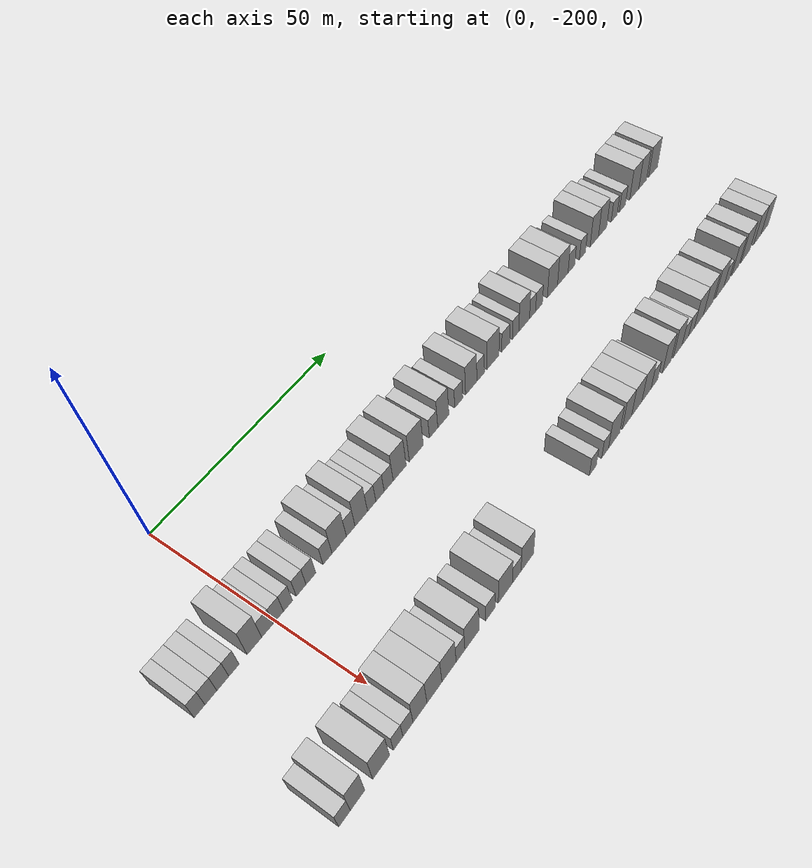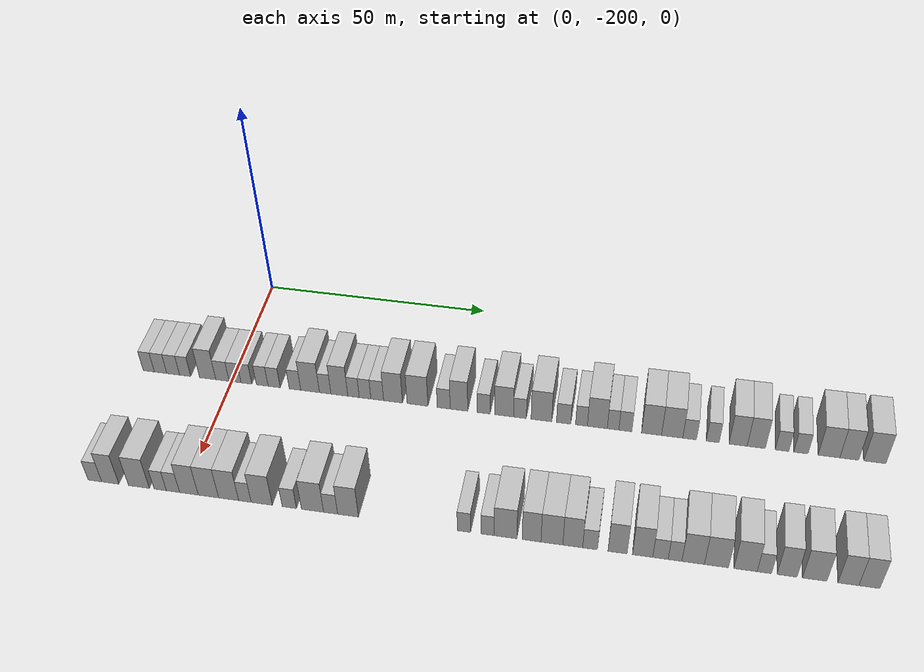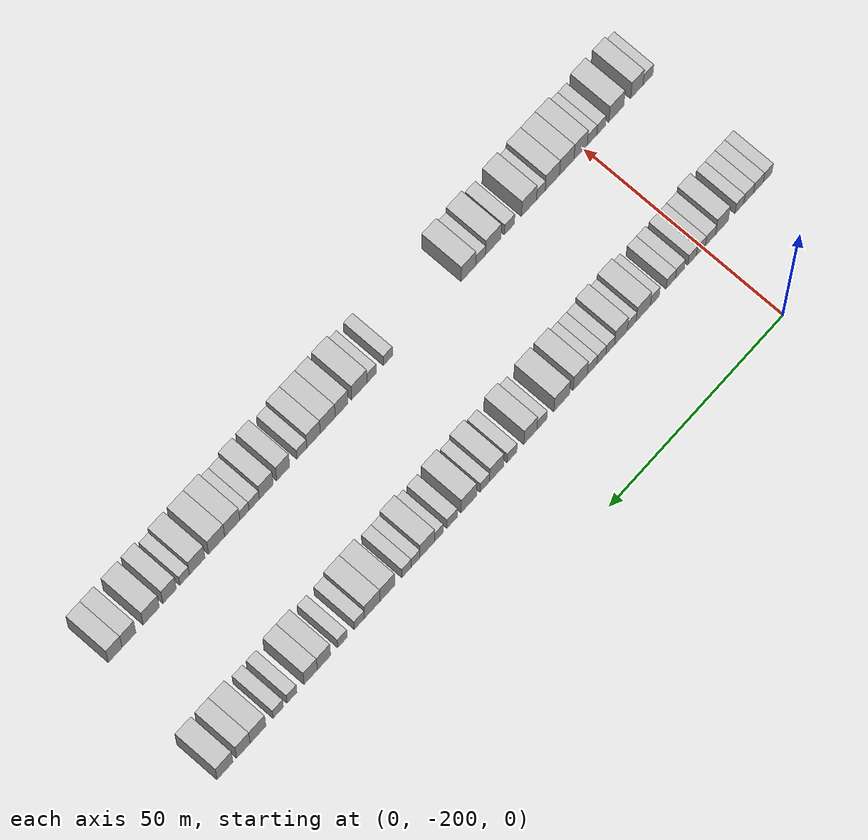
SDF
<sdf version="1.6">
 <world name="default">
  <model name="building_1">
   <static>1</static>
   <pose>25.0000 -218.7349 0 0.000000 0.000000 0.000000</pose>
   <link name="link">
    <pose>0 0 3.00 0 0 0</pose>
    <collision name="collision"><geometry><box><size>10.0000 2.5302 6.0000</size></box></geometry></collision>
    <visual name="visual">
     <cast_shadows>0</cast_shadows>
     <geometry><box><size>10.0000 2.5302 6.0000</size></box></geometry>
     <material>
      <script>
       <uri>model://HANNAS_wall/materials/scripts</uri>
       <uri>model://HANNAS_wall/materials/textures</uri>
       <name>vrc/HANNAS_wall</name>
      </script>
     </material>
    </visual>
   </link>
  </model>
  <model name="building_2">
   <static>1</static>
   <pose>25.0000 -216.0574 0 0.000000 0.000000 0.000000</pose>
   <link name="link">
    <pose>0 0 3.00 0 0 0</pose>
    <collision name="collision"><geometry><box><size>10.0000 2.8248 6.0000</size></box></geometry></collision>
    <visual name="visual">
     <cast_shadows>0</cast_shadows>
     <geometry><box><size>10.0000 2.8248 6.0000</size></box></geometry>
     <material>
      <script>
       <uri>model://HANNAS_wall/materials/scripts</uri>
       <uri>model://HANNAS_wall/materials/textures</uri>
       <name>vrc/HANNAS_wall</name>
      </script>
     </material>
    </visual>
   </link>
  </model>
  <model name="building_3">
   <static>1</static>
   <pose>25.0000 -213.1955 0 0.000000 0.000000 0.000000</pose>
   <link name="link">
    <pose>0 0 3.00 0 0 0</pose>
    <collision name="collision"><geometry><box><size>10.0000 2.8991 6.0000</size></box></geometry></collision>
    <visual name="visual">
     <cast_shadows>0</cast_shadows>
     <geometry><box><size>10.0000 2.8991 6.0000</size></box></geometry>
     <material>
      <script>
       <uri>model://HANNAS_wall/materials/scripts</uri>
       <uri>model://HANNAS_wall/materials/textures</uri>
       <name>vrc/HANNAS_wall</name>
      </script>
     </material>
    </visual>
   </link>
  </model>
  <model name="building_4">
   <static>1</static>
   <pose>25.0000 -210.4919 0 0.000000 0.000000 0.000000</pose>
   <link name="link">
    <pose>0 0 3.00 0 0 0</pose>
    <collision name="collision"><geometry><box><size>10.0000 2.5081 6.0000</size></box></geometry></collision>
    <visual name="visual">
     <cast_shadows>0</cast_shadows>
     <geometry><box><size>10.0000 2.5081 6.0000</size></box></geometry>
     <material>
      <script>
       <uri>model://HANNAS_wall/materials/scripts</uri>
       <uri>model://HANNAS_wall/materials/textures</uri>
       <name>vrc/HANNAS_wall</name>
      </script>
     </material>
    </visual>
   </link>
  </model>
  <model name="building_5">
   <static>1</static>
   <pose>25.0000 -205.4100 0 0.000000 0.000000 0.000000</pose>
   <link name="link">
    <pose>0 0 4.50 0 0 0</pose>
    <collision name="collision"><geometry><box><size>10.0000 3.6556 9.0000</size></box></geometry></collision>
    <visual name="visual">
     <cast_shadows>0</cast_shadows>
     <geometry><box><size>10.0000 3.6556 9.0000</size></box></geometry>
     <material>
      <script>
       <uri>model://HANNAS_wall/materials/scripts</uri>
       <uri>model://HANNAS_wall/materials/textures</uri>
       <name>vrc/HANNAS_wall</name>
      </script>
     </material>
    </visual>
   </link>
  </model>
  <model name="building_6">
   <static>1</static>
   <pose>25.0000 -202.0952 0 0.000000 0.000000 0.000000</pose>
   <link name="link">
    <pose>0 0 3.00 0 0 0</pose>
    <collision name="collision"><geometry><box><size>10.0000 2.9741 6.0000</size></box></geometry></collision>
    <visual name="visual">
     <cast_shadows>0</cast_shadows>
     <geometry><box><size>10.0000 2.9741 6.0000</size></box></geometry>
     <material>
      <script>
       <uri>model://HANNAS_wall/materials/scripts</uri>
       <uri>model://HANNAS_wall/materials/textures</uri>
       <name>vrc/HANNAS_wall</name>
      </script>
     </material>
    </visual>
   </link>
  </model>
  <model name="building_7">
   <static>1</static>
   <pose>25.0000 -199.2665 0 0.000000 0.000000 0.000000</pose>
   <link name="link">
    <pose>0 0 3.00 0 0 0</pose>
    <collision name="collision"><geometry><box><size>10.0000 2.6833 6.0000</size></box></geometry></collision>
    <visual name="visual">
     <cast_shadows>0</cast_shadows>
     <geometry><box><size>10.0000 2.6833 6.0000</size></box></geometry>
     <material>
      <script>
       <uri>model://HANNAS_wall/materials/scripts</uri>
       <uri>model://HANNAS_wall/materials/textures</uri>
       <name>vrc/HANNAS_wall</name>
      </script>
     </material>
    </visual>
   </link>
  </model>
  <model name="building_8">
   <static>1</static>
   <pose>25.0000 -196.7200 0 0.000000 0.000000 0.000000</pose>
   <link name="link">
    <pose>0 0 3.00 0 0 0</pose>
    <collision name="collision"><geometry><box><size>10.0000 2.4096 6.0000</size></box></geometry></collision>
    <visual name="visual">
     <cast_shadows>0</cast_shadows>
     <geometry><box><size>10.0000 2.4096 6.0000</size></box></geometry>
     <material>
      <script>
       <uri>model://HANNAS_wall/materials/scripts</uri>
       <uri>model://HANNAS_wall/materials/textures</uri>
       <name>vrc/HANNAS_wall</name>
      </script>
     </material>
    </visual>
   </link>
  </model>
  <model name="building_9">
   <static>1</static>
   <pose>25.0000 -193.1992 0 0.000000 0.000000 0.000000</pose>
   <link name="link">
    <pose>0 0 3.00 0 0 0</pose>
    <collision name="collision"><geometry><box><size>10.0000 2.6320 6.0000</size></box></geometry></collision>
    <visual name="visual">
     <cast_shadows>0</cast_shadows>
     <geometry><box><size>10.0000 2.6320 6.0000</size></box></geometry>
     <material>
      <script>
       <uri>model://HANNAS_wall/materials/scripts</uri>
       <uri>model://HANNAS_wall/materials/textures</uri>
       <name>vrc/HANNAS_wall</name>
      </script>
     </material>
    </visual>
   </link>
  </model>
  <model name="building_10">
   <static>1</static>
   <pose>25.0000 -190.5442 0 0.000000 0.000000 0.000000</pose>
   <link name="link">
    <pose>0 0 3.00 0 0 0</pose>
    <collision name="collision"><geometry><box><size>10.0000 2.6780 6.0000</size></box></geometry></collision>
    <visual name="visual">
     <cast_shadows>0</cast_shadows>
     <geometry><box><size>10.0000 2.6780 6.0000</size></box></geometry>
     <material>
      <script>
       <uri>model://HANNAS_wall/materials/scripts</uri>
       <uri>model://HANNAS_wall/materials/textures</uri>
       <name>vrc/HANNAS_wall</name>
      </script>
     </material>
    </visual>
   </link>
  </model>
  <model name="building_11">
   <static>1</static>
   <pose>25.0000 -185.9322 0 0.000000 0.000000 0.000000</pose>
   <link name="link">
    <pose>0 0 3.00 0 0 0</pose>
    <collision name="collision"><geometry><box><size>10.0000 2.5460 6.0000</size></box></geometry></collision>
    <visual name="visual">
     <cast_shadows>0</cast_shadows>
     <geometry><box><size>10.0000 2.5460 6.0000</size></box></geometry>
     <material>
      <script>
       <uri>model://HANNAS_wall/materials/scripts</uri>
       <uri>model://HANNAS_wall/materials/textures</uri>
       <name>vrc/HANNAS_wall</name>
      </script>
     </material>
    </visual>
   </link>
  </model>
  <model name="building_12">
   <static>1</static>
   <pose>25.0000 -182.6066 0 0.000000 0.000000 0.000000</pose>
   <link name="link">
    <pose>0 0 4.50 0 0 0</pose>
    <collision name="collision"><geometry><box><size>10.0000 4.1051 9.0000</size></box></geometry></collision>
    <visual name="visual">
     <cast_shadows>0</cast_shadows>
     <geometry><box><size>10.0000 4.1051 9.0000</size></box></geometry>
     <material>
      <script>
       <uri>model://HANNAS_wall/materials/scripts</uri>
       <uri>model://HANNAS_wall/materials/textures</uri>
       <name>vrc/HANNAS_wall</name>
      </script>
     </material>
    </visual>
   </link>
  </model>
  <model name="building_13">
   <static>1</static>
   <pose>25.0000 -179.2901 0 0.000000 0.000000 0.000000</pose>
   <link name="link">
    <pose>0 0 3.00 0 0 0</pose>
    <collision name="collision"><geometry><box><size>10.0000 2.5279 6.0000</size></box></geometry></collision>
    <visual name="visual">
     <cast_shadows>0</cast_shadows>
     <geometry><box><size>10.0000 2.5279 6.0000</size></box></geometry>
     <material>
      <script>
       <uri>model://HANNAS_wall/materials/scripts</uri>
       <uri>model://HANNAS_wall/materials/textures</uri>
       <name>vrc/HANNAS_wall</name>
      </script>
     </material>
    </visual>
   </link>
  </model>
  <model name="building_14">
   <static>1</static>
   <pose>25.0000 -176.1806 0 0.000000 0.000000 0.000000</pose>
   <link name="link">
    <pose>0 0 4.50 0 0 0</pose>
    <collision name="collision"><geometry><box><size>10.0000 3.6912 9.0000</size></box></geometry></collision>
    <visual name="visual">
     <cast_shadows>0</cast_shadows>
     <geometry><box><size>10.0000 3.6912 9.0000</size></box></geometry>
     <material>
      <script>
       <uri>model://HANNAS_wall/materials/scripts</uri>
       <uri>model://HANNAS_wall/materials/textures</uri>
       <name>vrc/HANNAS_wall</name>
      </script>
     </material>
    </visual>
   </link>
  </model>
  <model name="building_15">
   <static>1</static>
   <pose>25.0000 -173.0850 0 0.000000 0.000000 0.000000</pose>
   <link name="link">
    <pose>0 0 3.00 0 0 0</pose>
    <collision name="collision"><geometry><box><size>10.0000 2.4998 6.0000</size></box></geometry></collision>
    <visual name="visual">
     <cast_shadows>0</cast_shadows>
     <geometry><box><size>10.0000 2.4998 6.0000</size></box></geometry>
     <material>
      <script>
       <uri>model://HANNAS_wall/materials/scripts</uri>
       <uri>model://HANNAS_wall/materials/textures</uri>
       <name>vrc/HANNAS_wall</name>
      </script>
     </material>
    </visual>
   </link>
  </model>
  <model name="building_16">
   <static>1</static>
   <pose>25.0000 -170.5626 0 0.000000 0.000000 0.000000</pose>
   <link name="link">
    <pose>0 0 3.00 0 0 0</pose>
    <collision name="collision"><geometry><box><size>10.0000 2.5451 6.0000</size></box></geometry></collision>
    <visual name="visual">
     <cast_shadows>0</cast_shadows>
     <geometry><box><size>10.0000 2.5451 6.0000</size></box></geometry>
     <material>
      <script>
       <uri>model://HANNAS_wall/materials/scripts</uri>
       <uri>model://HANNAS_wall/materials/textures</uri>
       <name>vrc/HANNAS_wall</name>
      </script>
     </material>
    </visual>
   </link>
  </model>
  <model name="building_17">
   <static>1</static>
   <pose>25.0000 -167.9040 0 0.000000 0.000000 0.000000</pose>
   <link name="link">
    <pose>0 0 3.00 0 0 0</pose>
    <collision name="collision"><geometry><box><size>10.0000 2.7722 6.0000</size></box></geometry></collision>
    <visual name="visual">
     <cast_shadows>0</cast_shadows>
     <geometry><box><size>10.0000 2.7722 6.0000</size></box></geometry>
     <material>
      <script>
       <uri>model://HANNAS_wall/materials/scripts</uri>
       <uri>model://HANNAS_wall/materials/textures</uri>
       <name>vrc/HANNAS_wall</name>
      </script>
     </material>
    </visual>
   </link>
  </model>
  <model name="building_18">
   <static>1</static>
   <pose>25.0000 -164.4683 0 0.000000 0.000000 0.000000</pose>
   <link name="link">
    <pose>0 0 4.50 0 0 0</pose>
    <collision name="collision"><geometry><box><size>10.0000 4.0991 9.0000</size></box></geometry></collision>
    <visual name="visual">
     <cast_shadows>0</cast_shadows>
     <geometry><box><size>10.0000 4.0991 9.0000</size></box></geometry>
     <material>
      <script>
       <uri>model://HANNAS_wall/materials/scripts</uri>
       <uri>model://HANNAS_wall/materials/textures</uri>
       <name>vrc/HANNAS_wall</name>
      </script>
     </material>
    </visual>
   </link>
  </model>
  <model name="building_19">
   <static>1</static>
   <pose>25.0000 -159.1697 0 0.000000 0.000000 0.000000</pose>
   <link name="link">
    <pose>0 0 4.50 0 0 0</pose>
    <collision name="collision"><geometry><box><size>10.0000 4.4982 9.0000</size></box></geometry></collision>
    <visual name="visual">
     <cast_shadows>0</cast_shadows>
     <geometry><box><size>10.0000 4.4982 9.0000</size></box></geometry>
     <material>
      <script>
       <uri>model://HANNAS_wall/materials/scripts</uri>
       <uri>model://HANNAS_wall/materials/textures</uri>
       <name>vrc/HANNAS_wall</name>
      </script>
     </material>
    </visual>
   </link>
  </model>
  <model name="building_20">
   <static>1</static>
   <pose>25.0000 -153.5271 0 0.000000 0.000000 0.000000</pose>
   <link name="link">
    <pose>0 0 3.00 0 0 0</pose>
    <collision name="collision"><geometry><box><size>10.0000 2.7869 6.0000</size></box></geometry></collision>
    <visual name="visual">
     <cast_shadows>0</cast_shadows>
     <geometry><box><size>10.0000 2.7869 6.0000</size></box></geometry>
     <material>
      <script>
       <uri>model://HANNAS_wall/materials/scripts</uri>
       <uri>model://HANNAS_wall/materials/textures</uri>
       <name>vrc/HANNAS_wall</name>
      </script>
     </material>
    </visual>
   </link>
  </model>
  <model name="building_21">
   <static>1</static>
   <pose>25.0000 -150.2575 0 0.000000 0.000000 0.000000</pose>
   <link name="link">
    <pose>0 0 4.50 0 0 0</pose>
    <collision name="collision"><geometry><box><size>10.0000 3.7524 9.0000</size></box></geometry></collision>
    <visual name="visual">
     <cast_shadows>0</cast_shadows>
     <geometry><box><size>10.0000 3.7524 9.0000</size></box></geometry>
     <material>
      <script>
       <uri>model://HANNAS_wall/materials/scripts</uri>
       <uri>model://HANNAS_wall/materials/textures</uri>
       <name>vrc/HANNAS_wall</name>
      </script>
     </material>
    </visual>
   </link>
  </model>
  <model name="building_22">
   <static>1</static>
   <pose>25.0000 -145.0025 0 0.000000 0.000000 0.000000</pose>
   <link name="link">
    <pose>0 0 3.00 0 0 0</pose>
    <collision name="collision"><geometry><box><size>10.0000 2.7575 6.0000</size></box></geometry></collision>
    <visual name="visual">
     <cast_shadows>0</cast_shadows>
     <geometry><box><size>10.0000 2.7575 6.0000</size></box></geometry>
     <material>
      <script>
       <uri>model://HANNAS_wall/materials/scripts</uri>
       <uri>model://HANNAS_wall/materials/textures</uri>
       <name>vrc/HANNAS_wall</name>
      </script>
     </material>
    </visual>
   </link>
  </model>
  <model name="building_23">
   <static>1</static>
   <pose>25.0000 -140.6257 0 0.000000 0.000000 0.000000</pose>
   <link name="link">
    <pose>0 0 4.50 0 0 0</pose>
    <collision name="collision"><geometry><box><size>10.0000 3.9959 9.0000</size></box></geometry></collision>
    <visual name="visual">
     <cast_shadows>0</cast_shadows>
     <geometry><box><size>10.0000 3.9959 9.0000</size></box></geometry>
     <material>
      <script>
       <uri>model://HANNAS_wall/materials/scripts</uri>
       <uri>model://HANNAS_wall/materials/textures</uri>
       <name>vrc/HANNAS_wall</name>
      </script>
     </material>
    </visual>
   </link>
  </model>
  <model name="building_24">
   <static>1</static>
   <pose>25.0000 -137.2848 0 0.000000 0.000000 0.000000</pose>
   <link name="link">
    <pose>0 0 3.00 0 0 0</pose>
    <collision name="collision"><geometry><box><size>10.0000 2.6858 6.0000</size></box></geometry></collision>
    <visual name="visual">
     <cast_shadows>0</cast_shadows>
     <geometry><box><size>10.0000 2.6858 6.0000</size></box></geometry>
     <material>
      <script>
       <uri>model://HANNAS_wall/materials/scripts</uri>
       <uri>model://HANNAS_wall/materials/textures</uri>
       <name>vrc/HANNAS_wall</name>
      </script>
     </material>
    </visual>
   </link>
  </model>
  <model name="building_25">
   <static>1</static>
   <pose>25.0000 -132.7670 0 0.000000 0.000000 0.000000</pose>
   <link name="link">
    <pose>0 0 4.50 0 0 0</pose>
    <collision name="collision"><geometry><box><size>10.0000 4.3498 9.0000</size></box></geometry></collision>
    <visual name="visual">
     <cast_shadows>0</cast_shadows>
     <geometry><box><size>10.0000 4.3498 9.0000</size></box></geometry>
     <material>
      <script>
       <uri>model://HANNAS_wall/materials/scripts</uri>
       <uri>model://HANNAS_wall/materials/textures</uri>
       <name>vrc/HANNAS_wall</name>
      </script>
     </material>
    </visual>
   </link>
  </model>
  <model name="building_26">
   <static>1</static>
   <pose>25.0000 -128.0927 0 0.000000 0.000000 0.000000</pose>
   <link name="link">
    <pose>0 0 3.00 0 0 0</pose>
    <collision name="collision"><geometry><box><size>10.0000 2.9987 6.0000</size></box></geometry></collision>
    <visual name="visual">
     <cast_shadows>0</cast_shadows>
     <geometry><box><size>10.0000 2.9987 6.0000</size></box></geometry>
     <material>
      <script>
       <uri>model://HANNAS_wall/materials/scripts</uri>
       <uri>model://HANNAS_wall/materials/textures</uri>
       <name>vrc/HANNAS_wall</name>
      </script>
     </material>
    </visual>
   </link>
  </model>
  <model name="building_27">
   <static>1</static>
   <pose>25.0000 -124.3607 0 0.000000 0.000000 0.000000</pose>
   <link name="link">
    <pose>0 0 3.00 0 0 0</pose>
    <collision name="collision"><geometry><box><size>10.0000 2.4653 6.0000</size></box></geometry></collision>
    <visual name="visual">
     <cast_shadows>0</cast_shadows>
     <geometry><box><size>10.0000 2.4653 6.0000</size></box></geometry>
     <material>
      <script>
       <uri>model://HANNAS_wall/materials/scripts</uri>
       <uri>model://HANNAS_wall/materials/textures</uri>
       <name>vrc/HANNAS_wall</name>
      </script>
     </material>
    </visual>
   </link>
  </model>
  <model name="building_28">
   <static>1</static>
   <pose>25.0000 -121.0586 0 0.000000 0.000000 0.000000</pose>
   <link name="link">
    <pose>0 0 4.50 0 0 0</pose>
    <collision name="collision"><geometry><box><size>10.0000 4.1390 9.0000</size></box></geometry></collision>
    <visual name="visual">
     <cast_shadows>0</cast_shadows>
     <geometry><box><size>10.0000 4.1390 9.0000</size></box></geometry>
     <material>
      <script>
       <uri>model://HANNAS_wall/materials/scripts</uri>
       <uri>model://HANNAS_wall/materials/textures</uri>
       <name>vrc/HANNAS_wall</name>
      </script>
     </material>
    </visual>
   </link>
  </model>
  <model name="building_29">
   <static>1</static>
   <pose>25.0000 -117.7855 0 0.000000 0.000000 0.000000</pose>
   <link name="link">
    <pose>0 0 3.00 0 0 0</pose>
    <collision name="collision"><geometry><box><size>10.0000 2.4071 6.0000</size></box></geometry></collision>
    <visual name="visual">
     <cast_shadows>0</cast_shadows>
     <geometry><box><size>10.0000 2.4071 6.0000</size></box></geometry>
     <material>
      <script>
       <uri>model://HANNAS_wall/materials/scripts</uri>
       <uri>model://HANNAS_wall/materials/textures</uri>
       <name>vrc/HANNAS_wall</name>
      </script>
     </material>
    </visual>
   </link>
  </model>
  <model name="building_30">
   <static>1</static>
   <pose>25.0000 -115.2369 0 0.000000 0.000000 0.000000</pose>
   <link name="link">
    <pose>0 0 3.00 0 0 0</pose>
    <collision name="collision"><geometry><box><size>10.0000 2.6901 6.0000</size></box></geometry></collision>
    <visual name="visual">
     <cast_shadows>0</cast_shadows>
     <geometry><box><size>10.0000 2.6901 6.0000</size></box></geometry>
     <material>
      <script>
       <uri>model://HANNAS_wall/materials/scripts</uri>
       <uri>model://HANNAS_wall/materials/textures</uri>
       <name>vrc/HANNAS_wall</name>
      </script>
     </material>
    </visual>
   </link>
  </model>
  <model name="building_31">
   <static>1</static>
   <pose>25.0000 -109.8284 0 0.000000 0.000000 0.000000</pose>
   <link name="link">
    <pose>0 0 4.50 0 0 0</pose>
    <collision name="collision"><geometry><box><size>10.0000 4.1269 9.0000</size></box></geometry></collision>
    <visual name="visual">
     <cast_shadows>0</cast_shadows>
     <geometry><box><size>10.0000 4.1269 9.0000</size></box></geometry>
     <material>
      <script>
       <uri>model://HANNAS_wall/materials/scripts</uri>
       <uri>model://HANNAS_wall/materials/textures</uri>
       <name>vrc/HANNAS_wall</name>
      </script>
     </material>
    </visual>
   </link>
  </model>
  <model name="building_32">
   <static>1</static>
   <pose>25.0000 -105.5855 0 0.000000 0.000000 0.000000</pose>
   <link name="link">
    <pose>0 0 4.50 0 0 0</pose>
    <collision name="collision"><geometry><box><size>10.0000 4.3590 9.0000</size></box></geometry></collision>
    <visual name="visual">
     <cast_shadows>0</cast_shadows>
     <geometry><box><size>10.0000 4.3590 9.0000</size></box></geometry>
     <material>
      <script>
       <uri>model://HANNAS_wall/materials/scripts</uri>
       <uri>model://HANNAS_wall/materials/textures</uri>
       <name>vrc/HANNAS_wall</name>
      </script>
     </material>
    </visual>
   </link>
  </model>
  <model name="building_33">
   <static>1</static>
   <pose>25.0000 -101.9977 0 0.000000 0.000000 0.000000</pose>
   <link name="link">
    <pose>0 0 3.00 0 0 0</pose>
    <collision name="collision"><geometry><box><size>10.0000 2.8165 6.0000</size></box></geometry></collision>
    <visual name="visual">
     <cast_shadows>0</cast_shadows>
     <geometry><box><size>10.0000 2.8165 6.0000</size></box></geometry>
     <material>
      <script>
       <uri>model://HANNAS_wall/materials/scripts</uri>
       <uri>model://HANNAS_wall/materials/textures</uri>
       <name>vrc/HANNAS_wall</name>
      </script>
     </material>
    </visual>
   </link>
  </model>
  <model name="building_34">
   <static>1</static>
   <pose>25.0000 -97.2741 0 0.000000 0.000000 0.000000</pose>
   <link name="link">
    <pose>0 0 3.00 0 0 0</pose>
    <collision name="collision"><geometry><box><size>10.0000 2.6306 6.0000</size></box></geometry></collision>
    <visual name="visual">
     <cast_shadows>0</cast_shadows>
     <geometry><box><size>10.0000 2.6306 6.0000</size></box></geometry>
     <material>
      <script>
       <uri>model://HANNAS_wall/materials/scripts</uri>
       <uri>model://HANNAS_wall/materials/textures</uri>
       <name>vrc/HANNAS_wall</name>
      </script>
     </material>
    </visual>
   </link>
  </model>
  <model name="building_35">
   <static>1</static>
   <pose>25.0000 -92.1149 0 0.000000 0.000000 0.000000</pose>
   <link name="link">
    <pose>0 0 4.50 0 0 0</pose>
    <collision name="collision"><geometry><box><size>10.0000 3.6878 9.0000</size></box></geometry></collision>
    <visual name="visual">
     <cast_shadows>0</cast_shadows>
     <geometry><box><size>10.0000 3.6878 9.0000</size></box></geometry>
     <material>
      <script>
       <uri>model://HANNAS_wall/materials/scripts</uri>
       <uri>model://HANNAS_wall/materials/textures</uri>
       <name>vrc/HANNAS_wall</name>
      </script>
     </material>
    </visual>
   </link>
  </model>
  <model name="building_36">
   <static>1</static>
   <pose>25.0000 -88.4303 0 0.000000 0.000000 0.000000</pose>
   <link name="link">
    <pose>0 0 4.50 0 0 0</pose>
    <collision name="collision"><geometry><box><size>10.0000 3.6813 9.0000</size></box></geometry></collision>
    <visual name="visual">
     <cast_shadows>0</cast_shadows>
     <geometry><box><size>10.0000 3.6813 9.0000</size></box></geometry>
     <material>
      <script>
       <uri>model://HANNAS_wall/materials/scripts</uri>
       <uri>model://HANNAS_wall/materials/textures</uri>
       <name>vrc/HANNAS_wall</name>
      </script>
     </material>
    </visual>
   </link>
  </model>
  <model name="building_37">
   <static>1</static>
   <pose>25.0000 -83.2253 0 0.000000 0.000000 0.000000</pose>
   <link name="link">
    <pose>0 0 3.00 0 0 0</pose>
    <collision name="collision"><geometry><box><size>10.0000 2.7287 6.0000</size></box></geometry></collision>
    <visual name="visual">
     <cast_shadows>0</cast_shadows>
     <geometry><box><size>10.0000 2.7287 6.0000</size></box></geometry>
     <material>
      <script>
       <uri>model://HANNAS_wall/materials/scripts</uri>
       <uri>model://HANNAS_wall/materials/textures</uri>
       <name>vrc/HANNAS_wall</name>
      </script>
     </material>
    </visual>
   </link>
  </model>
  <model name="building_38">
   <static>1</static>
   <pose>25.0000 -79.4292 0 0.000000 0.000000 0.000000</pose>
   <link name="link">
    <pose>0 0 3.00 0 0 0</pose>
    <collision name="collision"><geometry><box><size>10.0000 2.8636 6.0000</size></box></geometry></collision>
    <visual name="visual">
     <cast_shadows>0</cast_shadows>
     <geometry><box><size>10.0000 2.8636 6.0000</size></box></geometry>
     <material>
      <script>
       <uri>model://HANNAS_wall/materials/scripts</uri>
       <uri>model://HANNAS_wall/materials/textures</uri>
       <name>vrc/HANNAS_wall</name>
      </script>
     </material>
    </visual>
   </link>
  </model>
  <model name="building_39">
   <static>1</static>
   <pose>25.0000 -73.8341 0 0.000000 0.000000 0.000000</pose>
   <link name="link">
    <pose>0 0 4.50 0 0 0</pose>
    <collision name="collision"><geometry><box><size>10.0000 4.3264 9.0000</size></box></geometry></collision>
    <visual name="visual">
     <cast_shadows>0</cast_shadows>
     <geometry><box><size>10.0000 4.3264 9.0000</size></box></geometry>
     <material>
      <script>
       <uri>model://HANNAS_wall/materials/scripts</uri>
       <uri>model://HANNAS_wall/materials/textures</uri>
       <name>vrc/HANNAS_wall</name>
      </script>
     </material>
    </visual>
   </link>
  </model>
  <model name="building_40">
   <static>1</static>
   <pose>25.0000 -69.7918 0 0.000000 0.000000 0.000000</pose>
   <link name="link">
    <pose>0 0 4.50 0 0 0</pose>
    <collision name="collision"><geometry><box><size>10.0000 3.7582 9.0000</size></box></geometry></collision>
    <visual name="visual">
     <cast_shadows>0</cast_shadows>
     <geometry><box><size>10.0000 3.7582 9.0000</size></box></geometry>
     <material>
      <script>
       <uri>model://HANNAS_wall/materials/scripts</uri>
       <uri>model://HANNAS_wall/materials/textures</uri>
       <name>vrc/HANNAS_wall</name>
      </script>
     </material>
    </visual>
   </link>
  </model>
  <model name="building_41">
   <static>1</static>
   <pose>25.0000 -64.7160 0 0.000000 0.000000 0.000000</pose>
   <link name="link">
    <pose>0 0 4.50 0 0 0</pose>
    <collision name="collision"><geometry><box><size>10.0000 4.3934 9.0000</size></box></geometry></collision>
    <visual name="visual">
     <cast_shadows>0</cast_shadows>
     <geometry><box><size>10.0000 4.3934 9.0000</size></box></geometry>
     <material>
      <script>
       <uri>model://HANNAS_wall/materials/scripts</uri>
       <uri>model://HANNAS_wall/materials/textures</uri>
       <name>vrc/HANNAS_wall</name>
      </script>
     </material>
    </visual>
   </link>
  </model>
  <model name="building_118">
   <static>1</static>
   <pose>55.0000 -218.5752 0 0.000000 0.000000 0.000000</pose>
   <link name="link">
    <pose>0 0 3.00 0 0 0</pose>
    <collision name="collision"><geometry><box><size>10.0000 2.8496 6.0000</size></box></geometry></collision>
    <visual name="visual">
     <cast_shadows>0</cast_shadows>
     <geometry><box><size>10.0000 2.8496 6.0000</size></box></geometry>
     <material>
      <script>
       <uri>model://HANNAS_wall/materials/scripts</uri>
       <uri>model://HANNAS_wall/materials/textures</uri>
       <name>vrc/HANNAS_wall</name>
      </script>
     </material>
    </visual>
   </link>
  </model>
  <model name="building_119">
   <static>1</static>
   <pose>55.0000 -215.3439 0 0.000000 0.000000 0.000000</pose>
   <link name="link">
    <pose>0 0 4.50 0 0 0</pose>
    <collision name="collision"><geometry><box><size>10.0000 3.6129 9.0000</size></box></geometry></collision>
    <visual name="visual">
     <cast_shadows>0</cast_shadows>
     <geometry><box><size>10.0000 3.6129 9.0000</size></box></geometry>
     <material>
      <script>
       <uri>model://HANNAS_wall/materials/scripts</uri>
       <uri>model://HANNAS_wall/materials/textures</uri>
       <name>vrc/HANNAS_wall</name>
      </script>
     </material>
    </visual>
   </link>
  </model>
  <model name="building_120">
   <static>1</static>
   <pose>55.0000 -209.3565 0 0.000000 0.000000 0.000000</pose>
   <link name="link">
    <pose>0 0 4.50 0 0 0</pose>
    <collision name="collision"><geometry><box><size>10.0000 4.3619 9.0000</size></box></geometry></collision>
    <visual name="visual">
     <cast_shadows>0</cast_shadows>
     <geometry><box><size>10.0000 4.3619 9.0000</size></box></geometry>
     <material>
      <script>
       <uri>model://HANNAS_wall/materials/scripts</uri>
       <uri>model://HANNAS_wall/materials/textures</uri>
       <name>vrc/HANNAS_wall</name>
      </script>
     </material>
    </visual>
   </link>
  </model>
  <model name="building_121">
   <static>1</static>
   <pose>55.0000 -204.9150 0 0.000000 0.000000 0.000000</pose>
   <link name="link">
    <pose>0 0 3.00 0 0 0</pose>
    <collision name="collision"><geometry><box><size>10.0000 2.5211 6.0000</size></box></geometry></collision>
    <visual name="visual">
     <cast_shadows>0</cast_shadows>
     <geometry><box><size>10.0000 2.5211 6.0000</size></box></geometry>
     <material>
      <script>
       <uri>model://HANNAS_wall/materials/scripts</uri>
       <uri>model://HANNAS_wall/materials/textures</uri>
       <name>vrc/HANNAS_wall</name>
      </script>
     </material>
    </visual>
   </link>
  </model>
  <model name="building_122">
   <static>1</static>
   <pose>55.0000 -202.2843 0 0.000000 0.000000 0.000000</pose>
   <link name="link">
    <pose>0 0 3.00 0 0 0</pose>
    <collision name="collision"><geometry><box><size>10.0000 2.7402 6.0000</size></box></geometry></collision>
    <visual name="visual">
     <cast_shadows>0</cast_shadows>
     <geometry><box><size>10.0000 2.7402 6.0000</size></box></geometry>
     <material>
      <script>
       <uri>model://HANNAS_wall/materials/scripts</uri>
       <uri>model://HANNAS_wall/materials/textures</uri>
       <name>vrc/HANNAS_wall</name>
      </script>
     </material>
    </visual>
   </link>
  </model>
  <model name="building_123">
   <static>1</static>
   <pose>55.0000 -198.9891 0 0.000000 0.000000 0.000000</pose>
   <link name="link">
    <pose>0 0 4.50 0 0 0</pose>
    <collision name="collision"><geometry><box><size>10.0000 3.8501 9.0000</size></box></geometry></collision>
    <visual name="visual">
     <cast_shadows>0</cast_shadows>
     <geometry><box><size>10.0000 3.8501 9.0000</size></box></geometry>
     <material>
      <script>
       <uri>model://HANNAS_wall/materials/scripts</uri>
       <uri>model://HANNAS_wall/materials/textures</uri>
       <name>vrc/HANNAS_wall</name>
      </script>
     </material>
    </visual>
   </link>
  </model>
  <model name="building_124">
   <static>1</static>
   <pose>55.0000 -194.9635 0 0.000000 0.000000 0.000000</pose>
   <link name="link">
    <pose>0 0 4.50 0 0 0</pose>
    <collision name="collision"><geometry><box><size>10.0000 4.2012 9.0000</size></box></geometry></collision>
    <visual name="visual">
     <cast_shadows>0</cast_shadows>
     <geometry><box><size>10.0000 4.2012 9.0000</size></box></geometry>
     <material>
      <script>
       <uri>model://HANNAS_wall/materials/scripts</uri>
       <uri>model://HANNAS_wall/materials/textures</uri>
       <name>vrc/HANNAS_wall</name>
      </script>
     </material>
    </visual>
   </link>
  </model>
  <model name="building_125">
   <static>1</static>
   <pose>55.0000 -190.8071 0 0.000000 0.000000 0.000000</pose>
   <link name="link">
    <pose>0 0 4.50 0 0 0</pose>
    <collision name="collision"><geometry><box><size>10.0000 4.1116 9.0000</size></box></geometry></collision>
    <visual name="visual">
     <cast_shadows>0</cast_shadows>
     <geometry><box><size>10.0000 4.1116 9.0000</size></box></geometry>
     <material>
      <script>
       <uri>model://HANNAS_wall/materials/scripts</uri>
       <uri>model://HANNAS_wall/materials/textures</uri>
       <name>vrc/HANNAS_wall</name>
      </script>
     </material>
    </visual>
   </link>
  </model>
  <model name="building_126">
   <static>1</static>
   <pose>55.0000 -187.4782 0 0.000000 0.000000 0.000000</pose>
   <link name="link">
    <pose>0 0 3.00 0 0 0</pose>
    <collision name="collision"><geometry><box><size>10.0000 2.5463 6.0000</size></box></geometry></collision>
    <visual name="visual">
     <cast_shadows>0</cast_shadows>
     <geometry><box><size>10.0000 2.5463 6.0000</size></box></geometry>
     <material>
      <script>
       <uri>model://HANNAS_wall/materials/scripts</uri>
       <uri>model://HANNAS_wall/materials/textures</uri>
       <name>vrc/HANNAS_wall</name>
      </script>
     </material>
    </visual>
   </link>
  </model>
  <model name="building_127">
   <static>1</static>
   <pose>55.0000 -184.0523 0 0.000000 0.000000 0.000000</pose>
   <link name="link">
    <pose>0 0 4.50 0 0 0</pose>
    <collision name="collision"><geometry><box><size>10.0000 4.3056 9.0000</size></box></geometry></collision>
    <visual name="visual">
     <cast_shadows>0</cast_shadows>
     <geometry><box><size>10.0000 4.3056 9.0000</size></box></geometry>
     <material>
      <script>
       <uri>model://HANNAS_wall/materials/scripts</uri>
       <uri>model://HANNAS_wall/materials/textures</uri>
       <name>vrc/HANNAS_wall</name>
      </script>
     </material>
    </visual>
   </link>
  </model>
  <model name="building_128">
   <static>1</static>
   <pose>55.0000 -178.4528 0 0.000000 0.000000 0.000000</pose>
   <link name="link">
    <pose>0 0 3.00 0 0 0</pose>
    <collision name="collision"><geometry><box><size>10.0000 2.8933 6.0000</size></box></geometry></collision>
    <visual name="visual">
     <cast_shadows>0</cast_shadows>
     <geometry><box><size>10.0000 2.8933 6.0000</size></box></geometry>
     <material>
      <script>
       <uri>model://HANNAS_wall/materials/scripts</uri>
       <uri>model://HANNAS_wall/materials/textures</uri>
       <name>vrc/HANNAS_wall</name>
      </script>
     </material>
    </visual>
   </link>
  </model>
  <model name="building_129">
   <static>1</static>
   <pose>55.0000 -173.7795 0 0.000000 0.000000 0.000000</pose>
   <link name="link">
    <pose>0 0 4.50 0 0 0</pose>
    <collision name="collision"><geometry><box><size>10.0000 4.4534 9.0000</size></box></geometry></collision>
    <visual name="visual">
     <cast_shadows>0</cast_shadows>
     <geometry><box><size>10.0000 4.4534 9.0000</size></box></geometry>
     <material>
      <script>
       <uri>model://HANNAS_wall/materials/scripts</uri>
       <uri>model://HANNAS_wall/materials/textures</uri>
       <name>vrc/HANNAS_wall</name>
      </script>
     </material>
    </visual>
   </link>
  </model>
  <model name="building_130">
   <static>1</static>
   <pose>55.0000 -170.1453 0 0.000000 0.000000 0.000000</pose>
   <link name="link">
    <pose>0 0 3.00 0 0 0</pose>
    <collision name="collision"><geometry><box><size>10.0000 2.8149 6.0000</size></box></geometry></collision>
    <visual name="visual">
     <cast_shadows>0</cast_shadows>
     <geometry><box><size>10.0000 2.8149 6.0000</size></box></geometry>
     <material>
      <script>
       <uri>model://HANNAS_wall/materials/scripts</uri>
       <uri>model://HANNAS_wall/materials/textures</uri>
       <name>vrc/HANNAS_wall</name>
      </script>
     </material>
    </visual>
   </link>
  </model>
  <model name="building_131">
   <static>1</static>
   <pose>55.0000 -166.6610 0 0.000000 0.000000 0.000000</pose>
   <link name="link">
    <pose>0 0 4.50 0 0 0</pose>
    <collision name="collision"><geometry><box><size>10.0000 4.1536 9.0000</size></box></geometry></collision>
    <visual name="visual">
     <cast_shadows>0</cast_shadows>
     <geometry><box><size>10.0000 4.1536 9.0000</size></box></geometry>
     <material>
      <script>
       <uri>model://HANNAS_wall/materials/scripts</uri>
       <uri>model://HANNAS_wall/materials/textures</uri>
       <name>vrc/HANNAS_wall</name>
      </script>
     </material>
    </visual>
   </link>
  </model>
  <model name="building_132">
   <static>1</static>
   <pose>55.0000 -143.7224 0 0.000000 0.000000 0.000000</pose>
   <link name="link">
    <pose>0 0 3.00 0 0 0</pose>
    <collision name="collision"><geometry><box><size>10.0000 2.5746 6.0000</size></box></geometry></collision>
    <visual name="visual">
     <cast_shadows>0</cast_shadows>
     <geometry><box><size>10.0000 2.5746 6.0000</size></box></geometry>
     <material>
      <script>
       <uri>model://HANNAS_wall/materials/scripts</uri>
       <uri>model://HANNAS_wall/materials/textures</uri>
       <name>vrc/HANNAS_wall</name>
      </script>
     </material>
    </visual>
   </link>
  </model>
  <model name="building_133">
   <static>1</static>
   <pose>55.0000 -139.1260 0 0.000000 0.000000 0.000000</pose>
   <link name="link">
    <pose>0 0 3.00 0 0 0</pose>
    <collision name="collision"><geometry><box><size>10.0000 2.6182 6.0000</size></box></geometry></collision>
    <visual name="visual">
     <cast_shadows>0</cast_shadows>
     <geometry><box><size>10.0000 2.6182 6.0000</size></box></geometry>
     <material>
      <script>
       <uri>model://HANNAS_wall/materials/scripts</uri>
       <uri>model://HANNAS_wall/materials/textures</uri>
       <name>vrc/HANNAS_wall</name>
      </script>
     </material>
    </visual>
   </link>
  </model>
  <model name="building_134">
   <static>1</static>
   <pose>55.0000 -135.6307 0 0.000000 0.000000 0.000000</pose>
   <link name="link">
    <pose>0 0 4.50 0 0 0</pose>
    <collision name="collision"><geometry><box><size>10.0000 4.3723 9.0000</size></box></geometry></collision>
    <visual name="visual">
     <cast_shadows>0</cast_shadows>
     <geometry><box><size>10.0000 4.3723 9.0000</size></box></geometry>
     <material>
      <script>
       <uri>model://HANNAS_wall/materials/scripts</uri>
       <uri>model://HANNAS_wall/materials/textures</uri>
       <name>vrc/HANNAS_wall</name>
      </script>
     </material>
    </visual>
   </link>
  </model>
  <model name="building_135">
   <static>1</static>
   <pose>55.0000 -130.6208 0 0.000000 0.000000 0.000000</pose>
   <link name="link">
    <pose>0 0 4.50 0 0 0</pose>
    <collision name="collision"><geometry><box><size>10.0000 3.6475 9.0000</size></box></geometry></collision>
    <visual name="visual">
     <cast_shadows>0</cast_shadows>
     <geometry><box><size>10.0000 3.6475 9.0000</size></box></geometry>
     <material>
      <script>
       <uri>model://HANNAS_wall/materials/scripts</uri>
       <uri>model://HANNAS_wall/materials/textures</uri>
       <name>vrc/HANNAS_wall</name>
      </script>
     </material>
    </visual>
   </link>
  </model>
  <model name="building_136">
   <static>1</static>
   <pose>55.0000 -126.6971 0 0.000000 0.000000 0.000000</pose>
   <link name="link">
    <pose>0 0 4.50 0 0 0</pose>
    <collision name="collision"><geometry><box><size>10.0000 4.1999 9.0000</size></box></geometry></collision>
    <visual name="visual">
     <cast_shadows>0</cast_shadows>
     <geometry><box><size>10.0000 4.1999 9.0000</size></box></geometry>
     <material>
      <script>
       <uri>model://HANNAS_wall/materials/scripts</uri>
       <uri>model://HANNAS_wall/materials/textures</uri>
       <name>vrc/HANNAS_wall</name>
      </script>
     </material>
    </visual>
   </link>
  </model>
  <model name="building_137">
   <static>1</static>
   <pose>55.0000 -122.7026 0 0.000000 0.000000 0.000000</pose>
   <link name="link">
    <pose>0 0 4.50 0 0 0</pose>
    <collision name="collision"><geometry><box><size>10.0000 3.7892 9.0000</size></box></geometry></collision>
    <visual name="visual">
     <cast_shadows>0</cast_shadows>
     <geometry><box><size>10.0000 3.7892 9.0000</size></box></geometry>
     <material>
      <script>
       <uri>model://HANNAS_wall/materials/scripts</uri>
       <uri>model://HANNAS_wall/materials/textures</uri>
       <name>vrc/HANNAS_wall</name>
      </script>
     </material>
    </visual>
   </link>
  </model>
  <model name="building_138">
   <static>1</static>
   <pose>55.0000 -119.3995 0 0.000000 0.000000 0.000000</pose>
   <link name="link">
    <pose>0 0 3.00 0 0 0</pose>
    <collision name="collision"><geometry><box><size>10.0000 2.8169 6.0000</size></box></geometry></collision>
    <visual name="visual">
     <cast_shadows>0</cast_shadows>
     <geometry><box><size>10.0000 2.8169 6.0000</size></box></geometry>
     <material>
      <script>
       <uri>model://HANNAS_wall/materials/scripts</uri>
       <uri>model://HANNAS_wall/materials/textures</uri>
       <name>vrc/HANNAS_wall</name>
      </script>
     </material>
    </visual>
   </link>
  </model>
  <model name="building_139">
   <static>1</static>
   <pose>55.0000 -114.1743 0 0.000000 0.000000 0.000000</pose>
   <link name="link">
    <pose>0 0 4.50 0 0 0</pose>
    <collision name="collision"><geometry><box><size>10.0000 3.6336 9.0000</size></box></geometry></collision>
    <visual name="visual">
     <cast_shadows>0</cast_shadows>
     <geometry><box><size>10.0000 3.6336 9.0000</size></box></geometry>
     <material>
      <script>
       <uri>model://HANNAS_wall/materials/scripts</uri>
       <uri>model://HANNAS_wall/materials/textures</uri>
       <name>vrc/HANNAS_wall</name>
      </script>
     </material>
    </visual>
   </link>
  </model>
  <model name="building_140">
   <static>1</static>
   <pose>55.0000 -109.4431 0 0.000000 0.000000 0.000000</pose>
   <link name="link">
    <pose>0 0 4.50 0 0 0</pose>
    <collision name="collision"><geometry><box><size>10.0000 3.8288 9.0000</size></box></geometry></collision>
    <visual name="visual">
     <cast_shadows>0</cast_shadows>
     <geometry><box><size>10.0000 3.8288 9.0000</size></box></geometry>
     <material>
      <script>
       <uri>model://HANNAS_wall/materials/scripts</uri>
       <uri>model://HANNAS_wall/materials/textures</uri>
       <name>vrc/HANNAS_wall</name>
      </script>
     </material>
    </visual>
   </link>
  </model>
  <model name="building_141">
   <static>1</static>
   <pose>55.0000 -106.0749 0 0.000000 0.000000 0.000000</pose>
   <link name="link">
    <pose>0 0 3.00 0 0 0</pose>
    <collision name="collision"><geometry><box><size>10.0000 2.9077 6.0000</size></box></geometry></collision>
    <visual name="visual">
     <cast_shadows>0</cast_shadows>
     <geometry><box><size>10.0000 2.9077 6.0000</size></box></geometry>
     <material>
      <script>
       <uri>model://HANNAS_wall/materials/scripts</uri>
       <uri>model://HANNAS_wall/materials/textures</uri>
       <name>vrc/HANNAS_wall</name>
      </script>
     </material>
    </visual>
   </link>
  </model>
  <model name="building_142">
   <static>1</static>
   <pose>55.0000 -103.3333 0 0.000000 0.000000 0.000000</pose>
   <link name="link">
    <pose>0 0 3.00 0 0 0</pose>
    <collision name="collision"><geometry><box><size>10.0000 2.5754 6.0000</size></box></geometry></collision>
    <visual name="visual">
     <cast_shadows>0</cast_shadows>
     <geometry><box><size>10.0000 2.5754 6.0000</size></box></geometry>
     <material>
      <script>
       <uri>model://HANNAS_wall/materials/scripts</uri>
       <uri>model://HANNAS_wall/materials/textures</uri>
       <name>vrc/HANNAS_wall</name>
      </script>
     </material>
    </visual>
   </link>
  </model>
  <model name="building_143">
   <static>1</static>
   <pose>55.0000 -99.9384 0 0.000000 0.000000 0.000000</pose>
   <link name="link">
    <pose>0 0 4.50 0 0 0</pose>
    <collision name="collision"><geometry><box><size>10.0000 4.2144 9.0000</size></box></geometry></collision>
    <visual name="visual">
     <cast_shadows>0</cast_shadows>
     <geometry><box><size>10.0000 4.2144 9.0000</size></box></geometry>
     <material>
      <script>
       <uri>model://HANNAS_wall/materials/scripts</uri>
       <uri>model://HANNAS_wall/materials/textures</uri>
       <name>vrc/HANNAS_wall</name>
      </script>
     </material>
    </visual>
   </link>
  </model>
  <model name="building_144">
   <static>1</static>
   <pose>55.0000 -95.5860 0 0.000000 0.000000 0.000000</pose>
   <link name="link">
    <pose>0 0 4.50 0 0 0</pose>
    <collision name="collision"><geometry><box><size>10.0000 4.4905 9.0000</size></box></geometry></collision>
    <visual name="visual">
     <cast_shadows>0</cast_shadows>
     <geometry><box><size>10.0000 4.4905 9.0000</size></box></geometry>
     <material>
      <script>
       <uri>model://HANNAS_wall/materials/scripts</uri>
       <uri>model://HANNAS_wall/materials/textures</uri>
       <name>vrc/HANNAS_wall</name>
      </script>
     </material>
    </visual>
   </link>
  </model>
  <model name="building_145">
   <static>1</static>
   <pose>55.0000 -90.1877 0 0.000000 0.000000 0.000000</pose>
   <link name="link">
    <pose>0 0 4.50 0 0 0</pose>
    <collision name="collision"><geometry><box><size>10.0000 4.3060 9.0000</size></box></geometry></collision>
    <visual name="visual">
     <cast_shadows>0</cast_shadows>
     <geometry><box><size>10.0000 4.3060 9.0000</size></box></geometry>
     <material>
      <script>
       <uri>model://HANNAS_wall/materials/scripts</uri>
       <uri>model://HANNAS_wall/materials/textures</uri>
       <name>vrc/HANNAS_wall</name>
      </script>
     </material>
    </visual>
   </link>
  </model>
  <model name="building_146">
   <static>1</static>
   <pose>55.0000 -86.7013 0 0.000000 0.000000 0.000000</pose>
   <link name="link">
    <pose>0 0 3.00 0 0 0</pose>
    <collision name="collision"><geometry><box><size>10.0000 2.6667 6.0000</size></box></geometry></collision>
    <visual name="visual">
     <cast_shadows>0</cast_shadows>
     <geometry><box><size>10.0000 2.6667 6.0000</size></box></geometry>
     <material>
      <script>
       <uri>model://HANNAS_wall/materials/scripts</uri>
       <uri>model://HANNAS_wall/materials/textures</uri>
       <name>vrc/HANNAS_wall</name>
      </script>
     </material>
    </visual>
   </link>
  </model>
  <model name="building_147">
   <static>1</static>
   <pose>55.0000 -82.5218 0 0.000000 0.000000 0.000000</pose>
   <link name="link">
    <pose>0 0 4.50 0 0 0</pose>
    <collision name="collision"><geometry><box><size>10.0000 3.6924 9.0000</size></box></geometry></collision>
    <visual name="visual">
     <cast_shadows>0</cast_shadows>
     <geometry><box><size>10.0000 3.6924 9.0000</size></box></geometry>
     <material>
      <script>
       <uri>model://HANNAS_wall/materials/scripts</uri>
       <uri>model://HANNAS_wall/materials/textures</uri>
       <name>vrc/HANNAS_wall</name>
      </script>
     </material>
    </visual>
   </link>
  </model>
  <model name="building_148">
   <static>1</static>
   <pose>55.0000 -77.4430 0 0.000000 0.000000 0.000000</pose>
   <link name="link">
    <pose>0 0 4.50 0 0 0</pose>
    <collision name="collision"><geometry><box><size>10.0000 4.4650 9.0000</size></box></geometry></collision>
    <visual name="visual">
     <cast_shadows>0</cast_shadows>
     <geometry><box><size>10.0000 4.4650 9.0000</size></box></geometry>
     <material>
      <script>
       <uri>model://HANNAS_wall/materials/scripts</uri>
       <uri>model://HANNAS_wall/materials/textures</uri>
       <name>vrc/HANNAS_wall</name>
      </script>
     </material>
    </visual>
   </link>
  </model>
  <model name="building_149">
   <static>1</static>
   <pose>55.0000 -71.3086 0 0.000000 0.000000 0.000000</pose>
   <link name="link">
    <pose>0 0 4.50 0 0 0</pose>
    <collision name="collision"><geometry><box><size>10.0000 3.8039 9.0000</size></box></geometry></collision>
    <visual name="visual">
     <cast_shadows>0</cast_shadows>
     <geometry><box><size>10.0000 3.8039 9.0000</size></box></geometry>
     <material>
      <script>
       <uri>model://HANNAS_wall/materials/scripts</uri>
       <uri>model://HANNAS_wall/materials/textures</uri>
       <name>vrc/HANNAS_wall</name>
      </script>
     </material>
    </visual>
   </link>
  </model>
  <model name="building_150">
   <static>1</static>
   <pose>55.0000 -67.5013 0 0.000000 0.000000 0.000000</pose>
   <link name="link">
    <pose>0 0 4.50 0 0 0</pose>
    <collision name="collision"><geometry><box><size>10.0000 3.8107 9.0000</size></box></geometry></collision>
    <visual name="visual">
     <cast_shadows>0</cast_shadows>
     <geometry><box><size>10.0000 3.8107 9.0000</size></box></geometry>
     <material>
      <script>
       <uri>model://HANNAS_wall/materials/scripts</uri>
       <uri>model://HANNAS_wall/materials/textures</uri>
       <name>vrc/HANNAS_wall</name>
      </script>
     </material>
    </visual>
   </link>
  </model>
 </world>
</sdf>
